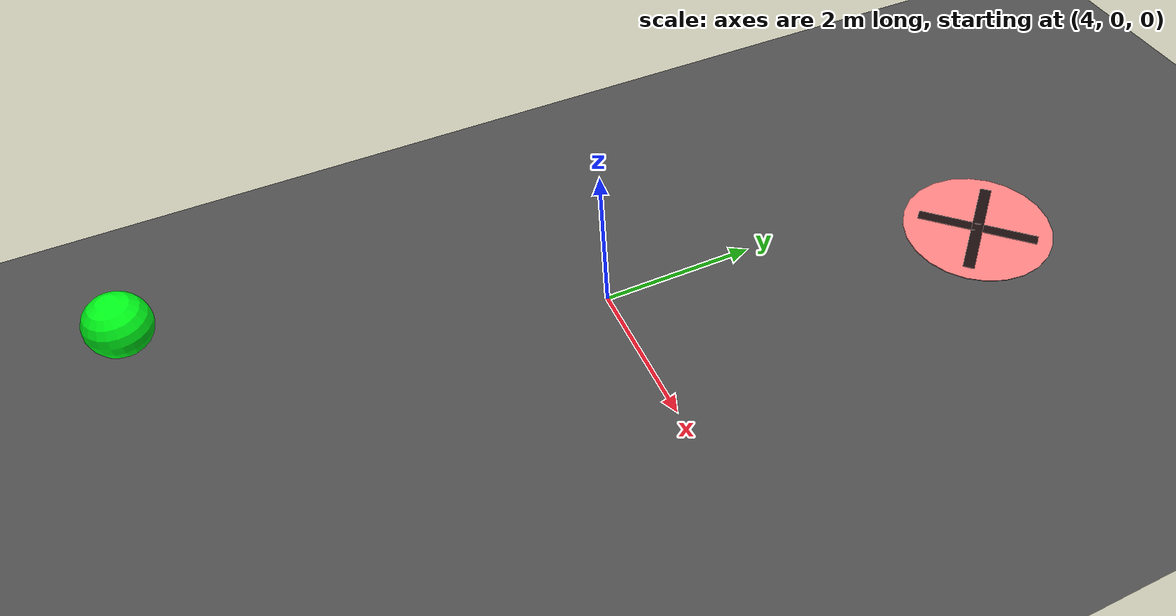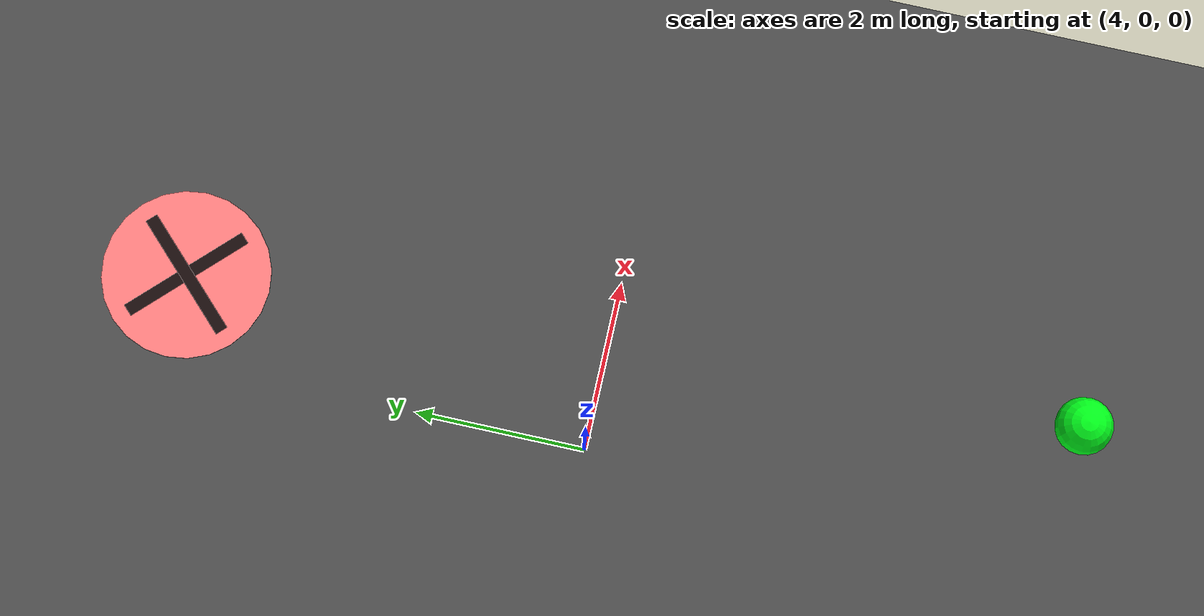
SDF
<sdf version="1.6">
 <world name="pioneer_world">
  <scene><grid>false</grid></scene>
  <physics name="50ms" type="dart">
   <max_step_size>0.05</max_step_size>
   <real_time_factor>1.0</real_time_factor>
  </physics>
  <plugin filename="ignition-gazebo-physics-system" name="ignition::gazebo::systems::Physics"/>
  <plugin filename="ignition-gazebo-user-commands-system" name="ignition::gazebo::systems::UserCommands"/>
  <plugin filename="ignition-gazebo-scene-broadcaster-system" name="ignition::gazebo::systems::SceneBroadcaster"/>
  <plugin filename="ignition-gazebo-sensors-system" name="ignition::gazebo::systems::Sensors">
   <render_engine>ogre2</render_engine>
  </plugin>
  <light type="directional" name="sun">
   <pose>0 0 10 0 0 0</pose>
   <diffuse>1 1 1 1</diffuse>
   <specular>0.5 0.5 0.5 1</specular>
   <attenuation>
    <range>1000</range>
    <constant>0.9</constant>
    <linear>0.01</linear>
    <quadratic>0.001</quadratic>
   </attenuation>
   <direction>-0.5 0.1 -0.9</direction>
  </light>
  <model name="ground_plane">
   <static>true</static>
   <link name="link">
    <visual name="plane">
     <geometry><plane><size>100 100</size><normal>0 0 1</normal></plane></geometry>
     <material>
      <ambient>0.3 0.3 0.3 0.9</ambient>
      <diffuse>0.3 0.3 0.3 0.9</diffuse>
      <specular>0.3 0.3 0.3 0.9</specular>
     </material>
    </visual>
    <collision name="plane">
     <geometry><plane><size>100 100</size><normal>0 0 1</normal></plane></geometry>
    </collision>
   </link>
  </model>
  <model name="target">
   <pose>5. 5. 0 0 0 0</pose>
   <static>true</static>
   <link name="link">
    <visual name="disk">
     <geometry><cylinder><radius>1</radius><length>0.01</length></cylinder></geometry>
     <material>
      <ambient>1 0.5 0.5 1</ambient>
      <diffuse>1 0.5 0.5 1</diffuse>
      <specular>1 0.5 0.5 1</specular>
     </material>
    </visual>
    <visual name="bar1">
     <pose>0 0 0 0 0 0.79</pose>
     <geometry><box><size>1.6 0.15 0.02</size></box></geometry>
     <material>
      <ambient>0.1 0.05 0.05 1</ambient>
      <diffuse>0.1 0.05 0.05 1</diffuse>
      <specular>0.1 0.05 0.05 1</specular>
     </material>
    </visual>
    <visual name="bar2">
     <pose>0 0 0 0 0 0.79</pose>
     <geometry><box><size>0.15 1.6 0.02</size></box></geometry>
     <material>
      <ambient>0.1 0.05 0.05 1</ambient>
      <diffuse>0.1 0.05 0.05 1</diffuse>
      <specular>0.1 0.05 0.05 1</specular>
     </material>
    </visual>
   </link>
   <plugin filename="libignition-gazebo-pose-publisher-system.so" name="ignition::gazebo::systems::PosePublisher">
    <publish_link_pose>false</publish_link_pose>
    <publish_collision_pose>false</publish_collision_pose>
    <publish_visual_pose>false</publish_visual_pose>
    <publish_nested_model_pose>true</publish_nested_model_pose>
   </plugin>
  </model>
  <model name="ball">
   <static>true</static>
   <pose>5. -5. 3 0 0 0</pose>
   <link name="link">
    <visual name="ball">
     <geometry><sphere><radius>0.3</radius></sphere></geometry>
     <material><ambient>0 1 0.1 1</ambient><diffuse>0 1 0.1 1</diffuse><specular>0 1 0.1 1</specular></material>
    </visual>
   </link>
   <plugin filename="libignition-gazebo-pose-publisher-system.so" name="ignition::gazebo::systems::PosePublisher">
    <publish_link_pose>false</publish_link_pose>
    <publish_collision_pose>false</publish_collision_pose>
    <publish_visual_pose>false</publish_visual_pose>
    <publish_nested_model_pose>true</publish_nested_model_pose>
   </plugin>
  </model>
 </world>
</sdf>
